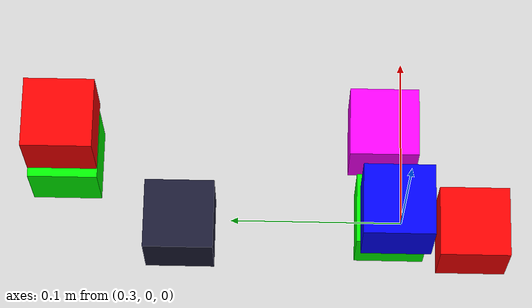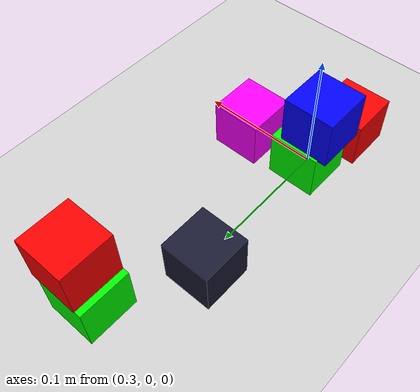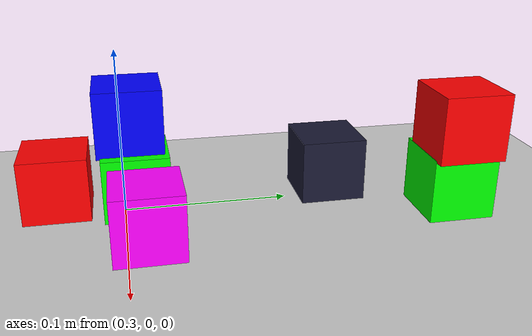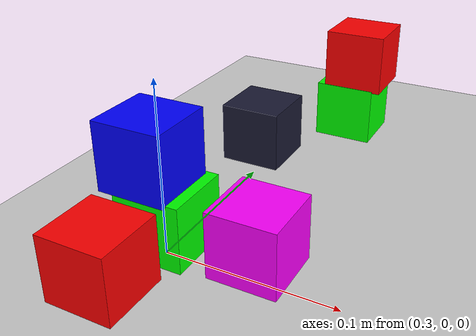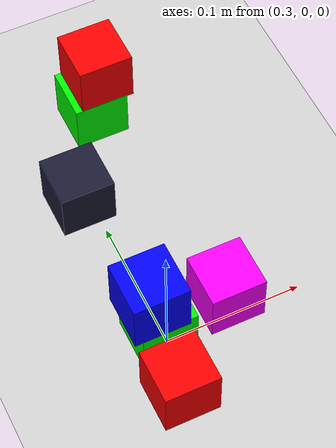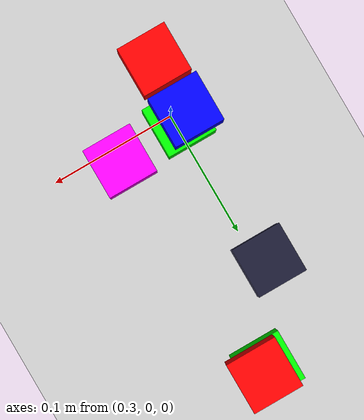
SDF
<sdf version="1.6">
 <world name="default">
  <light name="sun" type="directional">
   <pose>0 0 10 0 -0 0</pose>
   <diffuse>0.8 0.8 0.8 1</diffuse>
   <specular>0.2 0.2 0.2 1</specular>
   <attenuation>
    <range>1000</range>
    <constant>0.9</constant>
    <linear>0.01</linear>
    <quadratic>0.001</quadratic>
   </attenuation>
   <direction>-0.5 0.1 -0.9</direction>
  </light>
  <model name="ground_plane">
   <static>1</static>
   <link name="link">
    <collision name="collision">
     <geometry><plane><normal>0 0 1</normal><size>100 100</size></plane></geometry>
     <surface>
      <contact><collide_bitmask>65535</collide_bitmask></contact>
      <friction><ode><mu>100</mu><mu2>50</mu2></ode></friction>
     </surface>
    </collision>
    <visual name="visual">
     <cast_shadows>0</cast_shadows>
     <geometry><plane><normal>0 0 1</normal><size>100 100</size></plane></geometry>
     <material>
      <script><uri>file://media/materials/scripts/gazebo.material</uri><name>Gazebo/Grey</name></script>
     </material>
    </visual>
   </link>
  </model>
  <gravity>0 0 -9.8</gravity>
  <magnetic_field>6e-06 2.3e-05 -4.2e-05</magnetic_field>
  <atmosphere type="adiabatic"/>
  <physics name="default_physics" default="0" type="ode">
   <max_step_size>0.001</max_step_size>
   <real_time_factor>1</real_time_factor>
   <real_time_update_rate>1000</real_time_update_rate>
  </physics>
  <scene><ambient>0.4 0.4 0.4 1</ambient><background>0.7 0.7 0.7 1</background><shadows>1</shadows></scene>
  <audio><device>default</device></audio>
  <spherical_coordinates>
   <surface_model>EARTH_WGS84</surface_model>
   <latitude_deg>0</latitude_deg>
   <longitude_deg>0</longitude_deg>
   <elevation>0</elevation>
   <heading_deg>0</heading_deg>
  </spherical_coordinates>
  <model name="mass_cube_blue">
   <allow_auto_disable>0</allow_auto_disable>
   <pose>0.290582 0.005285 0.05799 2.9e-05 -9.8e-05 -0.000664</pose>
   <link name="box_body">
    <inertial>
     <pose>0 0 -0.5 0 -0 0</pose>
     <mass>0.1</mass>
     <inertia><ixx>1</ixx><ixy>0</ixy><ixz>0</ixz><iyy>1</iyy><iyz>0</iyz><izz>1</izz></inertia>
    </inertial>
    <collision name="box_geom">
     <geometry><box><size>0.04 0.04 0.04</size></box></geometry>
     <surface>
      <friction>
       <ode><mu>0.9985</mu><mu2>0.9985</mu2><fdir1>0 0 0</fdir1><slip1>0</slip1><slip2>0</slip2></ode>
      </friction>
      <bounce><restitution_coefficient>0</restitution_coefficient><threshold>100000</threshold></bounce>
      <contact>
       <ode>
        <soft_cfm>0</soft_cfm>
        <soft_erp>0.2</soft_erp>
        <kp>100000</kp>
        <kd>1</kd>
        <max_vel>100</max_vel>
        <min_depth>0.001</min_depth>
       </ode>
      </contact>
     </surface>
    </collision>
    <visual name="box_geom_visual">
     <geometry><box><size>0.04 0.04 0.04</size></box></geometry>
     <material>
      <ambient>0 0 1 1</ambient>
      <diffuse>0 0 1 1</diffuse>
      <specular>0 0 0 0</specular>
      <emissive>0 0 0 1</emissive>
     </material>
    </visual>
   </link>
   <static>0</static>
  </model>
  <model name="mass_cube_green">
   <allow_auto_disable>0</allow_auto_disable>
   <pose>0.297257 0.007527 0.018995 1.3e-05 -4e-05 -0.000446</pose>
   <link name="box_body">
    <inertial>
     <pose>0 0 -0.5 0 -0 0</pose>
     <mass>0.1</mass>
     <inertia><ixx>1</ixx><ixy>0</ixy><ixz>0</ixz><iyy>1</iyy><iyz>0</iyz><izz>1</izz></inertia>
    </inertial>
    <collision name="box_geom">
     <geometry><box><size>0.04 0.04 0.04</size></box></geometry>
     <surface>
      <friction>
       <ode><mu>0.9985</mu><mu2>0.9985</mu2><fdir1>0 0 0</fdir1><slip1>0</slip1><slip2>0</slip2></ode>
      </friction>
      <bounce><restitution_coefficient>0</restitution_coefficient><threshold>100000</threshold></bounce>
      <contact>
       <ode>
        <soft_cfm>0</soft_cfm>
        <soft_erp>0.2</soft_erp>
        <kp>100000</kp>
        <kd>1</kd>
        <max_vel>100</max_vel>
        <min_depth>0.001</min_depth>
       </ode>
      </contact>
     </surface>
    </collision>
    <visual name="box_geom_visual">
     <geometry><box><size>0.04 0.04 0.04</size></box></geometry>
     <material>
      <ambient>0 1 0 1</ambient>
      <diffuse>0 1 0 1</diffuse>
      <specular>0 0 0 0</specular>
      <emissive>0 0 0 1</emissive>
     </material>
    </visual>
   </link>
   <static>0</static>
  </model>
  <model name="mass_cube_pink">
   <allow_auto_disable>0</allow_auto_disable>
   <pose>0.349786 0.011556 0.018998 0 -0 1.4e-05</pose>
   <link name="box_body">
    <inertial>
     <pose>0 0 -0.5 0 -0 0</pose>
     <mass>0.1</mass>
     <inertia><ixx>1</ixx><ixy>0</ixy><ixz>0</ixz><iyy>1</iyy><iyz>0</iyz><izz>1</izz></inertia>
    </inertial>
    <collision name="box_geom">
     <geometry><box><size>0.04 0.04 0.04</size></box></geometry>
     <surface>
      <friction>
       <ode><mu>0.9985</mu><mu2>0.9985</mu2><fdir1>0 0 0</fdir1><slip1>0</slip1><slip2>0</slip2></ode>
      </friction>
      <bounce><restitution_coefficient>0</restitution_coefficient><threshold>100000</threshold></bounce>
      <contact>
       <ode>
        <soft_cfm>0</soft_cfm>
        <soft_erp>0.2</soft_erp>
        <kp>100000</kp>
        <kd>1</kd>
        <max_vel>100</max_vel>
        <min_depth>0.001</min_depth>
       </ode>
      </contact>
     </surface>
    </collision>
    <visual name="box_geom_visual">
     <geometry><box><size>0.04 0.04 0.04</size></box></geometry>
     <material>
      <ambient>1 0 1 1</ambient>
      <diffuse>1 0 1 1</diffuse>
      <specular>0 0 0 0</specular>
      <emissive>0 0 0 1</emissive>
     </material>
    </visual>
   </link>
   <static>0</static>
  </model>
  <model name="mass_cube_red">
   <allow_auto_disable>0</allow_auto_disable>
   <pose>0.290566 -0.040117 0.018998 0 0 -3.7e-05</pose>
   <link name="box_body">
    <inertial>
     <pose>0 0 -0.5 0 -0 0</pose>
     <mass>0.1</mass>
     <inertia><ixx>1</ixx><ixy>0</ixy><ixz>0</ixz><iyy>1</iyy><iyz>0</iyz><izz>1</izz></inertia>
    </inertial>
    <collision name="box_geom">
     <geometry><box><size>0.04 0.04 0.04</size></box></geometry>
     <surface>
      <friction>
       <ode><mu>0.9985</mu><mu2>0.9985</mu2><fdir1>0 0 0</fdir1><slip1>0</slip1><slip2>0</slip2></ode>
      </friction>
      <bounce><restitution_coefficient>0</restitution_coefficient><threshold>100000</threshold></bounce>
      <contact>
       <ode>
        <soft_cfm>0</soft_cfm>
        <soft_erp>0.2</soft_erp>
        <kp>100000</kp>
        <kd>1</kd>
        <max_vel>100</max_vel>
        <min_depth>0.001</min_depth>
       </ode>
      </contact>
     </surface>
    </collision>
    <visual name="box_geom_visual">
     <geometry><box><size>0.04 0.04 0.04</size></box></geometry>
     <material>
      <ambient>1 0 0 1</ambient>
      <diffuse>1 0 0 1</diffuse>
      <specular>0 0 0 0</specular>
      <emissive>0 0 0 1</emissive>
     </material>
    </visual>
   </link>
   <static>0</static>
  </model>
  <model name="mass_cube_green_clone">
   <allow_auto_disable>0</allow_auto_disable>
   <pose>0.332412 0.196717 0.018995 -1e-06 3.1e-05 -0.000117</pose>
   <link name="box_body">
    <inertial>
     <pose>0 0 -0.5 0 -0 0</pose>
     <mass>0.1</mass>
     <inertia><ixx>1</ixx><ixy>0</ixy><ixz>0</ixz><iyy>1</iyy><iyz>0</iyz><izz>1</izz></inertia>
    </inertial>
    <collision name="box_geom">
     <geometry><box><size>0.04 0.04 0.04</size></box></geometry>
     <surface>
      <friction>
       <ode><mu>0.9985</mu><mu2>0.9985</mu2><fdir1>0 0 0</fdir1><slip1>0</slip1><slip2>0</slip2></ode>
      </friction>
      <bounce><restitution_coefficient>0</restitution_coefficient><threshold>100000</threshold></bounce>
      <contact>
       <ode>
        <soft_cfm>0</soft_cfm>
        <soft_erp>0.2</soft_erp>
        <kp>100000</kp>
        <kd>1</kd>
        <max_vel>100</max_vel>
        <min_depth>0.001</min_depth>
       </ode>
      </contact>
     </surface>
    </collision>
    <visual name="box_geom_visual">
     <geometry><box><size>0.04 0.04 0.04</size></box></geometry>
     <material>
      <ambient>0 1 0 1</ambient>
      <diffuse>0 1 0 1</diffuse>
      <specular>0 0 0 0</specular>
      <emissive>0 0 0 1</emissive>
     </material>
    </visual>
   </link>
   <static>0</static>
  </model>
  <model name="mass_cube_red_clone">
   <allow_auto_disable>0</allow_auto_disable>
   <pose>0.337567 0.196946 0.05799 -3e-06 7.2e-05 0.001637</pose>
   <link name="box_body">
    <inertial>
     <pose>0 0 -0.5 0 -0 0</pose>
     <mass>0.1</mass>
     <inertia><ixx>1</ixx><ixy>0</ixy><ixz>0</ixz><iyy>1</iyy><iyz>0</iyz><izz>1</izz></inertia>
    </inertial>
    <collision name="box_geom">
     <geometry><box><size>0.04 0.04 0.04</size></box></geometry>
     <surface>
      <friction>
       <ode><mu>0.9985</mu><mu2>0.9985</mu2><fdir1>0 0 0</fdir1><slip1>0</slip1><slip2>0</slip2></ode>
      </friction>
      <bounce><restitution_coefficient>0</restitution_coefficient><threshold>100000</threshold></bounce>
      <contact>
       <ode>
        <soft_cfm>0</soft_cfm>
        <soft_erp>0.2</soft_erp>
        <kp>100000</kp>
        <kd>1</kd>
        <max_vel>100</max_vel>
        <min_depth>0.001</min_depth>
       </ode>
      </contact>
     </surface>
    </collision>
    <visual name="box_geom_visual">
     <geometry><box><size>0.04 0.04 0.04</size></box></geometry>
     <material>
      <ambient>1 0 0 1</ambient>
      <diffuse>1 0 0 1</diffuse>
      <specular>0 0 0 0</specular>
      <emissive>0 0 0 1</emissive>
     </material>
    </visual>
   </link>
   <static>0</static>
  </model>
  <model name="mass_cube_dark_blue">
   <allow_auto_disable>0</allow_auto_disable>
   <pose>0.291893 0.129201 0.018998 0 -0 0</pose>
   <link name="box_body">
    <inertial>
     <pose>0 0 -0.5 0 -0 0</pose>
     <mass>0.1</mass>
     <inertia><ixx>1</ixx><ixy>0</ixy><ixz>0</ixz><iyy>1</iyy><iyz>0</iyz><izz>1</izz></inertia>
    </inertial>
    <collision name="box_geom">
     <geometry><box><size>0.04 0.04 0.04</size></box></geometry>
     <surface>
      <friction>
       <ode><mu>0.9985</mu><mu2>0.9985</mu2><fdir1>0 0 0</fdir1><slip1>0</slip1><slip2>0</slip2></ode>
      </friction>
      <bounce><restitution_coefficient>0</restitution_coefficient><threshold>100000</threshold></bounce>
      <contact>
       <ode>
        <soft_cfm>0</soft_cfm>
        <soft_erp>0.2</soft_erp>
        <kp>100000</kp>
        <kd>1</kd>
        <max_vel>100</max_vel>
        <min_depth>0.001</min_depth>
       </ode>
      </contact>
     </surface>
    </collision>
    <visual name="box_geom_visual">
     <geometry><box><size>0.04 0.04 0.04</size></box></geometry>
     <material>
      <ambient>0.1 0.1 0.1 1</ambient>
      <diffuse>0.1 0.1 0.2 1</diffuse>
      <specular>0 0 0 0</specular>
      <emissive>0 0 0 1</emissive>
     </material>
    </visual>
   </link>
   <static>0</static>
  </model>
 </world>
</sdf>
